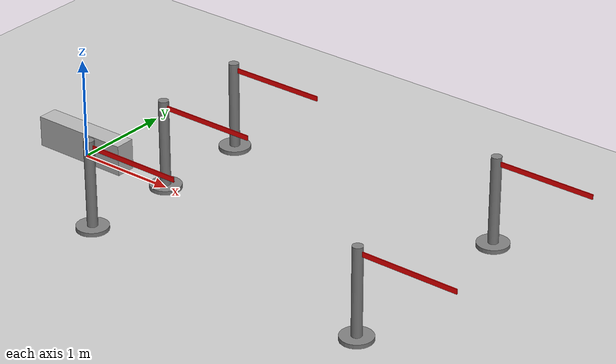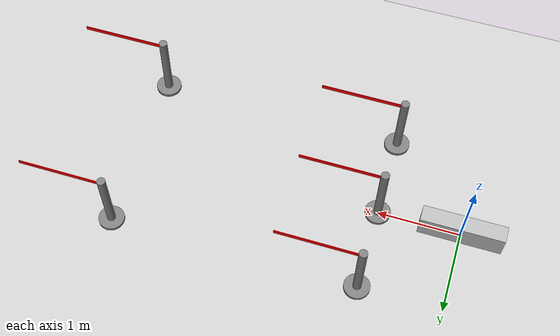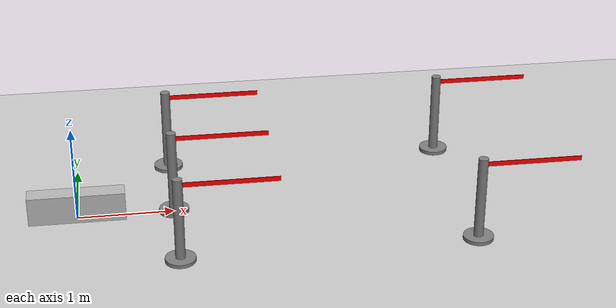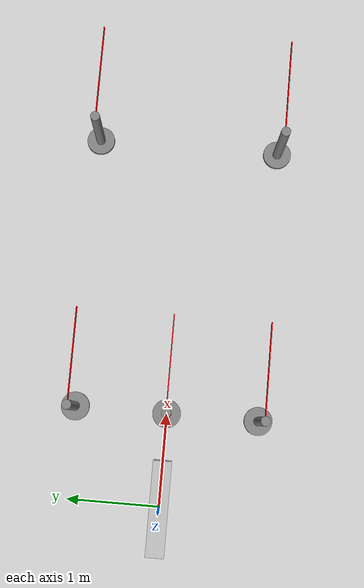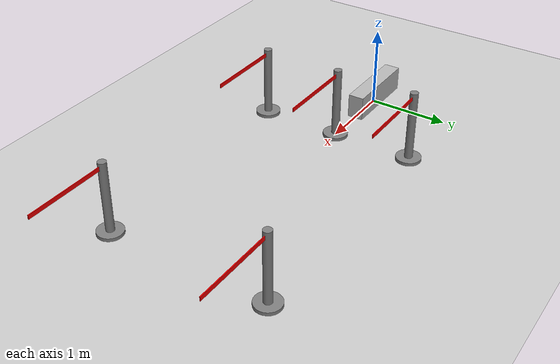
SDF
<sdf version="1.4">
 <world name="default">
  <physics type="ode">
   <max_step_size>0.001</max_step_size>
   <real_time_factor>1</real_time_factor>
   <real_time_update_rate>1000</real_time_update_rate>
   <magnetic_field>34 0 -36</magnetic_field>
   <gravity>0 0 -9.8</gravity>
  </physics>
  <spherical_coordinates>
   <surface_model>EARTH_WGS84</surface_model>
   <latitude_deg>0</latitude_deg>
   <longitude_deg>0</longitude_deg>
   <elevation>0</elevation>
   <heading_deg>0</heading_deg>
  </spherical_coordinates>
  <scene><sky><clouds><speed>12</speed></clouds></sky></scene>
  <include><uri>model://sun</uri></include>
  <include><uri>model://ground_plane</uri></include>
  <model name="take off platorm">
   <static>true</static>
   <link name="link">
    <collision name="collision"><geometry><box><size>1 0.2 0.6</size></box></geometry></collision>
    <visual name="visual"><geometry><box><size>1 0.2 0.6</size></box></geometry></visual>
   </link>
  </model>
  <include>
   <uri>model://barrier_with_belt_1</uri>
   <name>barrier_with_belt_1_entrance_1</name>
   <pose>1 0 0 0 0 0</pose>
  </include>
  <include>
   <uri>model://barrier_with_belt_1</uri>
   <name>barrier_with_belt_1_entrance_2</name>
   <pose>1 1 0 0 0 0</pose>
  </include>
  <include>
   <uri>model://barrier_with_belt_1</uri>
   <name>barrier_with_belt_1_entrance_3</name>
   <pose>1 -1 0 0 0 0</pose>
  </include>
  <include>
   <uri>model://barrier_with_belt_1</uri>
   <name>barrier_with_belt_1_exit_2</name>
   <pose>4 1 0 0 0 0</pose>
  </include>
  <include>
   <uri>model://barrier_with_belt_1</uri>
   <name>barrier_with_belt_1_exit_3</name>
   <pose>4 -1 0 0 0 0</pose>
  </include>
  <plugin name="link_attacher_plugin" filename="libgazebo_ros_link_attacher.so"/>
 </world>
</sdf>

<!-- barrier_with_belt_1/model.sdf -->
<sdf version='1.6'>
  <model name="barrier_with_belt">
    <static>true</static> <!-- Static model -->

    <!-- Base Plate -->
    <link name="base1">
      <visual name="base1_visual">
        <geometry>
          <cylinder>
            <radius>0.155</radius> <!-- Diameter: 31 cm -->
            <length>0.04</length> <!-- Thickness: 4 cm -->
          </cylinder>
        </geometry>
        <material>
          <ambient>0.5 0.5 0.5 1</ambient> <!-- Grey color -->
        </material>
      </visual>
      <collision name="base1_collision">
        <geometry>
          <cylinder>
            <radius>0.155</radius>
            <length>0.04</length>
          </cylinder>
        </geometry>
      </collision>
      <pose>0 0 0.02 0 0 0</pose> <!-- Base at ground level -->
    </link>

    <!-- Pillar -->
    <link name="cylinder1">
      <visual name="cylinder1_visual">
        <geometry>
          <cylinder>
            <radius>0.05</radius> <!-- Radius: 5 cm -->
            <length>0.89</length> <!-- Height: 89 cm -->
          </cylinder>
        </geometry>
        <material>
          <ambient>0.5 0.5 0.5 1</ambient> <!-- Grey color -->
        </material>
      </visual>
      <collision name="cylinder1_collision">
        <geometry>
          <cylinder>
            <radius>0.05</radius>
            <length>0.89</length>
          </cylinder>
        </geometry>
      </collision>
      <pose>0 0 0.46 0 0 0</pose> <!-- Placed on top of the base -->
    </link>

    <!-- Belt -->
    <link name="tape">
      <visual name="tape_visual">
        <geometry>
          <box>
            <size>1.0 0.048 0.01</size> <!-- Length, Width, Thickness -->
          </box>
        </geometry>
        <material>
          <ambient>1 0 0 1</ambient> <!-- Red color -->
        </material>
      </visual>
      <collision name="tape_collision">
        <geometry>
          <box>
            <size>1.0 0.048 0.01</size>
          </box>
        </geometry>
      </collision>
      <pose>0.50 0 0.84 1.571 0 0</pose> <!-- Aligned with the pillar -->
    </link>

    <!-- Fixed Joints -->
    <joint name="cylinder1_to_base" type="fixed">
      <parent>base1</parent>
      <child>cylinder1</child>
    </joint>
    <joint name="cylinder1_to_tape" type="fixed">
      <parent>cylinder1</parent>
      <child>tape</child>
    </joint>

  </model>
</sdf>
